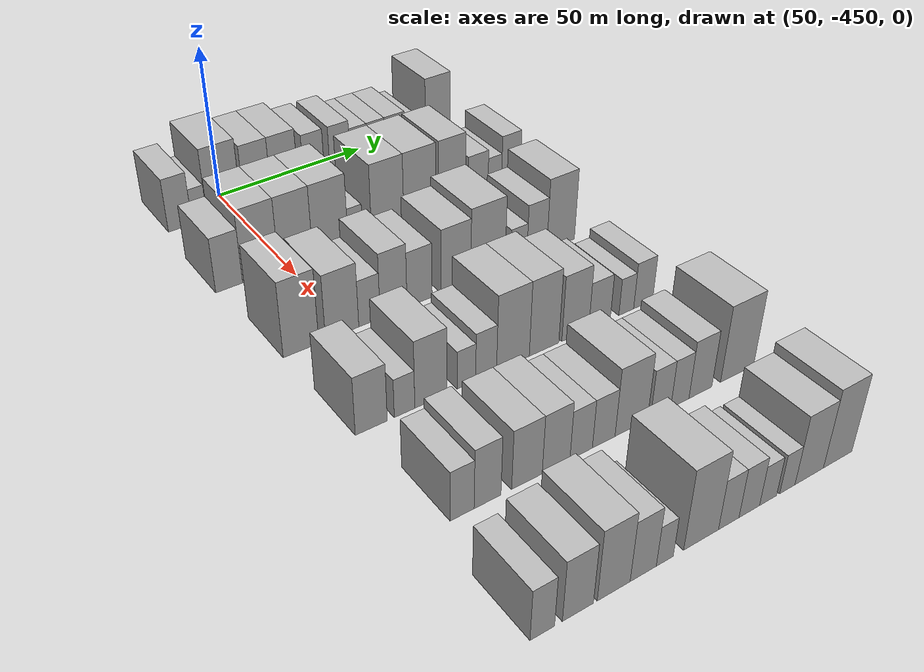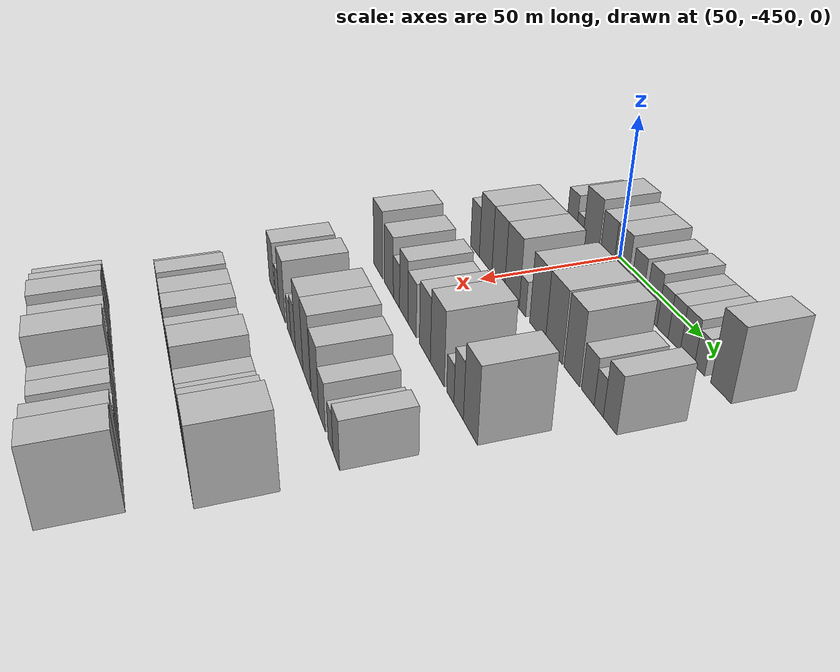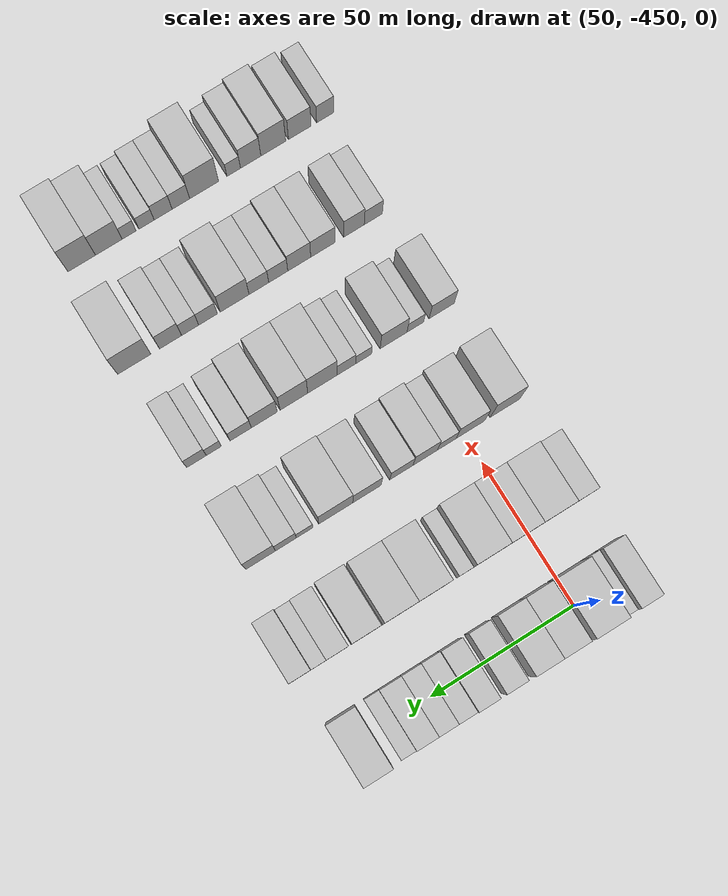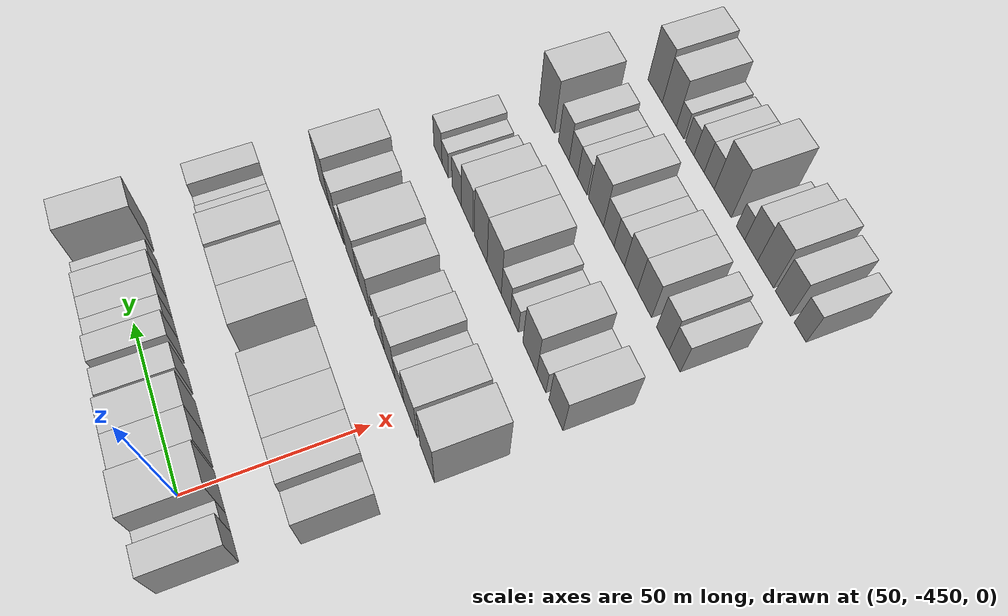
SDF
<sdf version="1.6">
 <world name="default">
  <model name="building_12">
   <static>1</static>
   <pose>50.0000 -467.2561 0 0.000000 0.000000 0.000000</pose>
   <link name="link">
    <pose>0 0 9.00 0 0 0</pose>
    <collision name="collision"><geometry><box><size>20.0000 7.5766 18.0000</size></box></geometry></collision>
    <visual name="visual">
     <cast_shadows>0</cast_shadows>
     <geometry><box><size>20.0000 7.5766 18.0000</size></box></geometry>
     <material>
      <script>
       <uri>model://HANNAS_wall/materials/scripts</uri>
       <uri>model://HANNAS_wall/materials/textures</uri>
       <name>vrc/HANNAS_wall</name>
      </script>
     </material>
    </visual>
   </link>
  </model>
  <model name="building_13">
   <static>1</static>
   <pose>50.0000 -461.0217 0 0.000000 0.000000 0.000000</pose>
   <link name="link">
    <pose>0 0 6.00 0 0 0</pose>
    <collision name="collision"><geometry><box><size>20.0000 4.8921 12.0000</size></box></geometry></collision>
    <visual name="visual">
     <cast_shadows>0</cast_shadows>
     <geometry><box><size>20.0000 4.8921 12.0000</size></box></geometry>
     <material>
      <script>
       <uri>model://HANNAS_wall/materials/scripts</uri>
       <uri>model://HANNAS_wall/materials/textures</uri>
       <name>vrc/HANNAS_wall</name>
      </script>
     </material>
    </visual>
   </link>
  </model>
  <model name="building_14">
   <static>1</static>
   <pose>50.0000 -452.9068 0 0.000000 0.000000 0.000000</pose>
   <link name="link">
    <pose>0 0 12.00 0 0 0</pose>
    <collision name="collision"><geometry><box><size>20.0000 11.3376 24.0000</size></box></geometry></collision>
    <visual name="visual">
     <cast_shadows>0</cast_shadows>
     <geometry><box><size>20.0000 11.3376 24.0000</size></box></geometry>
     <material>
      <script>
       <uri>model://HANNAS_wall/materials/scripts</uri>
       <uri>model://HANNAS_wall/materials/textures</uri>
       <name>vrc/HANNAS_wall</name>
      </script>
     </material>
    </visual>
   </link>
  </model>
  <model name="building_15">
   <static>1</static>
   <pose>50.0000 -441.6312 0 0.000000 0.000000 0.000000</pose>
   <link name="link">
    <pose>0 0 10.50 0 0 0</pose>
    <collision name="collision"><geometry><box><size>20.0000 9.2136 21.0000</size></box></geometry></collision>
    <visual name="visual">
     <cast_shadows>0</cast_shadows>
     <geometry><box><size>20.0000 9.2136 21.0000</size></box></geometry>
     <material>
      <script>
       <uri>model://HANNAS_wall/materials/scripts</uri>
       <uri>model://HANNAS_wall/materials/textures</uri>
       <name>vrc/HANNAS_wall</name>
      </script>
     </material>
    </visual>
   </link>
  </model>
  <model name="building_16">
   <static>1</static>
   <pose>50.0000 -432.2996 0 0.000000 0.000000 0.000000</pose>
   <link name="link">
    <pose>0 0 10.50 0 0 0</pose>
    <collision name="collision"><geometry><box><size>20.0000 9.4496 21.0000</size></box></geometry></collision>
    <visual name="visual">
     <cast_shadows>0</cast_shadows>
     <geometry><box><size>20.0000 9.4496 21.0000</size></box></geometry>
     <material>
      <script>
       <uri>model://HANNAS_wall/materials/scripts</uri>
       <uri>model://HANNAS_wall/materials/textures</uri>
       <name>vrc/HANNAS_wall</name>
      </script>
     </material>
    </visual>
   </link>
  </model>
  <model name="building_17">
   <static>1</static>
   <pose>50.0000 -421.8844 0 0.000000 0.000000 0.000000</pose>
   <link name="link">
    <pose>0 0 9.00 0 0 0</pose>
    <collision name="collision"><geometry><box><size>20.0000 7.3808 18.0000</size></box></geometry></collision>
    <visual name="visual">
     <cast_shadows>0</cast_shadows>
     <geometry><box><size>20.0000 7.3808 18.0000</size></box></geometry>
     <material>
      <script>
       <uri>model://HANNAS_wall/materials/scripts</uri>
       <uri>model://HANNAS_wall/materials/textures</uri>
       <name>vrc/HANNAS_wall</name>
      </script>
     </material>
    </visual>
   </link>
  </model>
  <model name="building_18">
   <static>1</static>
   <pose>50.0000 -412.5191 0 0.000000 0.000000 0.000000</pose>
   <link name="link">
    <pose>0 0 9.00 0 0 0</pose>
    <collision name="collision"><geometry><box><size>20.0000 7.3499 18.0000</size></box></geometry></collision>
    <visual name="visual">
     <cast_shadows>0</cast_shadows>
     <geometry><box><size>20.0000 7.3499 18.0000</size></box></geometry>
     <material>
      <script>
       <uri>model://HANNAS_wall/materials/scripts</uri>
       <uri>model://HANNAS_wall/materials/textures</uri>
       <name>vrc/HANNAS_wall</name>
      </script>
     </material>
    </visual>
   </link>
  </model>
  <model name="building_19">
   <static>1</static>
   <pose>50.0000 -405.6760 0 0.000000 0.000000 0.000000</pose>
   <link name="link">
    <pose>0 0 7.50 0 0 0</pose>
    <collision name="collision"><geometry><box><size>20.0000 6.3364 15.0000</size></box></geometry></collision>
    <visual name="visual">
     <cast_shadows>0</cast_shadows>
     <geometry><box><size>20.0000 6.3364 15.0000</size></box></geometry>
     <material>
      <script>
       <uri>model://HANNAS_wall/materials/scripts</uri>
       <uri>model://HANNAS_wall/materials/textures</uri>
       <name>vrc/HANNAS_wall</name>
      </script>
     </material>
    </visual>
   </link>
  </model>
  <model name="building_20">
   <static>1</static>
   <pose>50.0000 -399.1858 0 0.000000 0.000000 0.000000</pose>
   <link name="link">
    <pose>0 0 7.50 0 0 0</pose>
    <collision name="collision"><geometry><box><size>20.0000 6.6439 15.0000</size></box></geometry></collision>
    <visual name="visual">
     <cast_shadows>0</cast_shadows>
     <geometry><box><size>20.0000 6.6439 15.0000</size></box></geometry>
     <material>
      <script>
       <uri>model://HANNAS_wall/materials/scripts</uri>
       <uri>model://HANNAS_wall/materials/textures</uri>
       <name>vrc/HANNAS_wall</name>
      </script>
     </material>
    </visual>
   </link>
  </model>
  <model name="building_21">
   <static>1</static>
   <pose>50.0000 -392.1210 0 0.000000 0.000000 0.000000</pose>
   <link name="link">
    <pose>0 0 7.50 0 0 0</pose>
    <collision name="collision"><geometry><box><size>20.0000 7.4857 15.0000</size></box></geometry></collision>
    <visual name="visual">
     <cast_shadows>0</cast_shadows>
     <geometry><box><size>20.0000 7.4857 15.0000</size></box></geometry>
     <material>
      <script>
       <uri>model://HANNAS_wall/materials/scripts</uri>
       <uri>model://HANNAS_wall/materials/textures</uri>
       <name>vrc/HANNAS_wall</name>
      </script>
     </material>
    </visual>
   </link>
  </model>
  <model name="building_22">
   <static>1</static>
   <pose>50.0000 -385.8359 0 0.000000 0.000000 0.000000</pose>
   <link name="link">
    <pose>0 0 6.00 0 0 0</pose>
    <collision name="collision"><geometry><box><size>20.0000 5.0846 12.0000</size></box></geometry></collision>
    <visual name="visual">
     <cast_shadows>0</cast_shadows>
     <geometry><box><size>20.0000 5.0846 12.0000</size></box></geometry>
     <material>
      <script>
       <uri>model://HANNAS_wall/materials/scripts</uri>
       <uri>model://HANNAS_wall/materials/textures</uri>
       <name>vrc/HANNAS_wall</name>
      </script>
     </material>
    </visual>
   </link>
  </model>
  <model name="building_23">
   <static>1</static>
   <pose>50.0000 -375.3861 0 0.000000 0.000000 0.000000</pose>
   <link name="link">
    <pose>0 0 12.00 0 0 0</pose>
    <collision name="collision"><geometry><box><size>20.0000 9.8149 24.0000</size></box></geometry></collision>
    <visual name="visual">
     <cast_shadows>0</cast_shadows>
     <geometry><box><size>20.0000 9.8149 24.0000</size></box></geometry>
     <material>
      <script>
       <uri>model://HANNAS_wall/materials/scripts</uri>
       <uri>model://HANNAS_wall/materials/textures</uri>
       <name>vrc/HANNAS_wall</name>
      </script>
     </material>
    </visual>
   </link>
  </model>
  <model name="building_135">
   <static>1</static>
   <pose>85.0000 -468.1888 0 0.000000 0.000000 0.000000</pose>
   <link name="link">
    <pose>0 0 9.00 0 0 0</pose>
    <collision name="collision"><geometry><box><size>20.0000 8.2189 18.0000</size></box></geometry></collision>
    <visual name="visual">
     <cast_shadows>0</cast_shadows>
     <geometry><box><size>20.0000 8.2189 18.0000</size></box></geometry>
     <material>
      <script>
       <uri>model://HANNAS_wall/materials/scripts</uri>
       <uri>model://HANNAS_wall/materials/textures</uri>
       <name>vrc/HANNAS_wall</name>
      </script>
     </material>
    </visual>
   </link>
  </model>
  <model name="building_136">
   <static>1</static>
   <pose>85.0000 -458.4187 0 0.000000 0.000000 0.000000</pose>
   <link name="link">
    <pose>0 0 12.00 0 0 0</pose>
    <collision name="collision"><geometry><box><size>20.0000 11.3213 24.0000</size></box></geometry></collision>
    <visual name="visual">
     <cast_shadows>0</cast_shadows>
     <geometry><box><size>20.0000 11.3213 24.0000</size></box></geometry>
     <material>
      <script>
       <uri>model://HANNAS_wall/materials/scripts</uri>
       <uri>model://HANNAS_wall/materials/textures</uri>
       <name>vrc/HANNAS_wall</name>
      </script>
     </material>
    </visual>
   </link>
  </model>
  <model name="building_137">
   <static>1</static>
   <pose>85.0000 -447.2856 0 0.000000 0.000000 0.000000</pose>
   <link name="link">
    <pose>0 0 12.00 0 0 0</pose>
    <collision name="collision"><geometry><box><size>20.0000 10.9450 24.0000</size></box></geometry></collision>
    <visual name="visual">
     <cast_shadows>0</cast_shadows>
     <geometry><box><size>20.0000 10.9450 24.0000</size></box></geometry>
     <material>
      <script>
       <uri>model://HANNAS_wall/materials/scripts</uri>
       <uri>model://HANNAS_wall/materials/textures</uri>
       <name>vrc/HANNAS_wall</name>
      </script>
     </material>
    </visual>
   </link>
  </model>
  <model name="building_138">
   <static>1</static>
   <pose>85.0000 -435.9674 0 0.000000 0.000000 0.000000</pose>
   <link name="link">
    <pose>0 0 12.00 0 0 0</pose>
    <collision name="collision"><geometry><box><size>20.0000 11.6914 24.0000</size></box></geometry></collision>
    <visual name="visual">
     <cast_shadows>0</cast_shadows>
     <geometry><box><size>20.0000 11.6914 24.0000</size></box></geometry>
     <material>
      <script>
       <uri>model://HANNAS_wall/materials/scripts</uri>
       <uri>model://HANNAS_wall/materials/textures</uri>
       <name>vrc/HANNAS_wall</name>
      </script>
     </material>
    </visual>
   </link>
  </model>
  <model name="building_139">
   <static>1</static>
   <pose>85.0000 -427.6466 0 0.000000 0.000000 0.000000</pose>
   <link name="link">
    <pose>0 0 6.00 0 0 0</pose>
    <collision name="collision"><geometry><box><size>20.0000 4.9502 12.0000</size></box></geometry></collision>
    <visual name="visual">
     <cast_shadows>0</cast_shadows>
     <geometry><box><size>20.0000 4.9502 12.0000</size></box></geometry>
     <material>
      <script>
       <uri>model://HANNAS_wall/materials/scripts</uri>
       <uri>model://HANNAS_wall/materials/textures</uri>
       <name>vrc/HANNAS_wall</name>
      </script>
     </material>
    </visual>
   </link>
  </model>
  <model name="building_140">
   <static>1</static>
   <pose>85.0000 -416.5354 0 0.000000 0.000000 0.000000</pose>
   <link name="link">
    <pose>0 0 12.00 0 0 0</pose>
    <collision name="collision"><geometry><box><size>20.0000 11.2720 24.0000</size></box></geometry></collision>
    <visual name="visual">
     <cast_shadows>0</cast_shadows>
     <geometry><box><size>20.0000 11.2720 24.0000</size></box></geometry>
     <material>
      <script>
       <uri>model://HANNAS_wall/materials/scripts</uri>
       <uri>model://HANNAS_wall/materials/textures</uri>
       <name>vrc/HANNAS_wall</name>
      </script>
     </material>
    </visual>
   </link>
  </model>
  <model name="building_141">
   <static>1</static>
   <pose>85.0000 -405.1722 0 0.000000 0.000000 0.000000</pose>
   <link name="link">
    <pose>0 0 12.00 0 0 0</pose>
    <collision name="collision"><geometry><box><size>20.0000 11.4544 24.0000</size></box></geometry></collision>
    <visual name="visual">
     <cast_shadows>0</cast_shadows>
     <geometry><box><size>20.0000 11.4544 24.0000</size></box></geometry>
     <material>
      <script>
       <uri>model://HANNAS_wall/materials/scripts</uri>
       <uri>model://HANNAS_wall/materials/textures</uri>
       <name>vrc/HANNAS_wall</name>
      </script>
     </material>
    </visual>
   </link>
  </model>
  <model name="building_142">
   <static>1</static>
   <pose>85.0000 -393.5200 0 0.000000 0.000000 0.000000</pose>
   <link name="link">
    <pose>0 0 12.00 0 0 0</pose>
    <collision name="collision"><geometry><box><size>20.0000 9.8500 24.0000</size></box></geometry></collision>
    <visual name="visual">
     <cast_shadows>0</cast_shadows>
     <geometry><box><size>20.0000 9.8500 24.0000</size></box></geometry>
     <material>
      <script>
       <uri>model://HANNAS_wall/materials/scripts</uri>
       <uri>model://HANNAS_wall/materials/textures</uri>
       <name>vrc/HANNAS_wall</name>
      </script>
     </material>
    </visual>
   </link>
  </model>
  <model name="building_143">
   <static>1</static>
   <pose>85.0000 -383.8487 0 0.000000 0.000000 0.000000</pose>
   <link name="link">
    <pose>0 0 7.50 0 0 0</pose>
    <collision name="collision"><geometry><box><size>20.0000 7.4926 15.0000</size></box></geometry></collision>
    <visual name="visual">
     <cast_shadows>0</cast_shadows>
     <geometry><box><size>20.0000 7.4926 15.0000</size></box></geometry>
     <material>
      <script>
       <uri>model://HANNAS_wall/materials/scripts</uri>
       <uri>model://HANNAS_wall/materials/textures</uri>
       <name>vrc/HANNAS_wall</name>
      </script>
     </material>
    </visual>
   </link>
  </model>
  <model name="building_144">
   <static>1</static>
   <pose>85.0000 -377.5324 0 0.000000 0.000000 0.000000</pose>
   <link name="link">
    <pose>0 0 6.00 0 0 0</pose>
    <collision name="collision"><geometry><box><size>20.0000 5.1399 12.0000</size></box></geometry></collision>
    <visual name="visual">
     <cast_shadows>0</cast_shadows>
     <geometry><box><size>20.0000 5.1399 12.0000</size></box></geometry>
     <material>
      <script>
       <uri>model://HANNAS_wall/materials/scripts</uri>
       <uri>model://HANNAS_wall/materials/textures</uri>
       <name>vrc/HANNAS_wall</name>
      </script>
     </material>
    </visual>
   </link>
  </model>
  <model name="building_145">
   <static>1</static>
   <pose>85.0000 -371.3233 0 0.000000 0.000000 0.000000</pose>
   <link name="link">
    <pose>0 0 9.00 0 0 0</pose>
    <collision name="collision"><geometry><box><size>20.0000 7.2783 18.0000</size></box></geometry></collision>
    <visual name="visual">
     <cast_shadows>0</cast_shadows>
     <geometry><box><size>20.0000 7.2783 18.0000</size></box></geometry>
     <material>
      <script>
       <uri>model://HANNAS_wall/materials/scripts</uri>
       <uri>model://HANNAS_wall/materials/textures</uri>
       <name>vrc/HANNAS_wall</name>
      </script>
     </material>
    </visual>
   </link>
  </model>
  <model name="building_260">
   <static>1</static>
   <pose>120.0000 -464.5844 0 0.000000 0.000000 0.000000</pose>
   <link name="link">
    <pose>0 0 12.00 0 0 0</pose>
    <collision name="collision"><geometry><box><size>20.0000 10.4617 24.0000</size></box></geometry></collision>
    <visual name="visual">
     <cast_shadows>0</cast_shadows>
     <geometry><box><size>20.0000 10.4617 24.0000</size></box></geometry>
     <material>
      <script>
       <uri>model://HANNAS_wall/materials/scripts</uri>
       <uri>model://HANNAS_wall/materials/textures</uri>
       <name>vrc/HANNAS_wall</name>
      </script>
     </material>
    </visual>
   </link>
  </model>
  <model name="building_261">
   <static>1</static>
   <pose>120.0000 -452.3016 0 0.000000 0.000000 0.000000</pose>
   <link name="link">
    <pose>0 0 10.50 0 0 0</pose>
    <collision name="collision"><geometry><box><size>20.0000 10.1040 21.0000</size></box></geometry></collision>
    <visual name="visual">
     <cast_shadows>0</cast_shadows>
     <geometry><box><size>20.0000 10.1040 21.0000</size></box></geometry>
     <material>
      <script>
       <uri>model://HANNAS_wall/materials/scripts</uri>
       <uri>model://HANNAS_wall/materials/textures</uri>
       <name>vrc/HANNAS_wall</name>
      </script>
     </material>
    </visual>
   </link>
  </model>
  <model name="building_262">
   <static>1</static>
   <pose>120.0000 -443.9284 0 0.000000 0.000000 0.000000</pose>
   <link name="link">
    <pose>0 0 7.50 0 0 0</pose>
    <collision name="collision"><geometry><box><size>20.0000 6.6424 15.0000</size></box></geometry></collision>
    <visual name="visual">
     <cast_shadows>0</cast_shadows>
     <geometry><box><size>20.0000 6.6424 15.0000</size></box></geometry>
     <material>
      <script>
       <uri>model://HANNAS_wall/materials/scripts</uri>
       <uri>model://HANNAS_wall/materials/textures</uri>
       <name>vrc/HANNAS_wall</name>
      </script>
     </material>
    </visual>
   </link>
  </model>
  <model name="building_263">
   <static>1</static>
   <pose>120.0000 -436.3320 0 0.000000 0.000000 0.000000</pose>
   <link name="link">
    <pose>0 0 10.50 0 0 0</pose>
    <collision name="collision"><geometry><box><size>20.0000 8.5503 21.0000</size></box></geometry></collision>
    <visual name="visual">
     <cast_shadows>0</cast_shadows>
     <geometry><box><size>20.0000 8.5503 21.0000</size></box></geometry>
     <material>
      <script>
       <uri>model://HANNAS_wall/materials/scripts</uri>
       <uri>model://HANNAS_wall/materials/textures</uri>
       <name>vrc/HANNAS_wall</name>
      </script>
     </material>
    </visual>
   </link>
  </model>
  <model name="building_264">
   <static>1</static>
   <pose>120.0000 -427.9840 0 0.000000 0.000000 0.000000</pose>
   <link name="link">
    <pose>0 0 9.00 0 0 0</pose>
    <collision name="collision"><geometry><box><size>20.0000 8.1458 18.0000</size></box></geometry></collision>
    <visual name="visual">
     <cast_shadows>0</cast_shadows>
     <geometry><box><size>20.0000 8.1458 18.0000</size></box></geometry>
     <material>
      <script>
       <uri>model://HANNAS_wall/materials/scripts</uri>
       <uri>model://HANNAS_wall/materials/textures</uri>
       <name>vrc/HANNAS_wall</name>
      </script>
     </material>
    </visual>
   </link>
  </model>
  <model name="building_265">
   <static>1</static>
   <pose>120.0000 -415.9526 0 0.000000 0.000000 0.000000</pose>
   <link name="link">
    <pose>0 0 10.50 0 0 0</pose>
    <collision name="collision"><geometry><box><size>20.0000 9.9169 21.0000</size></box></geometry></collision>
    <visual name="visual">
     <cast_shadows>0</cast_shadows>
     <geometry><box><size>20.0000 9.9169 21.0000</size></box></geometry>
     <material>
      <script>
       <uri>model://HANNAS_wall/materials/scripts</uri>
       <uri>model://HANNAS_wall/materials/textures</uri>
       <name>vrc/HANNAS_wall</name>
      </script>
     </material>
    </visual>
   </link>
  </model>
  <model name="building_266">
   <static>1</static>
   <pose>120.0000 -405.0792 0 0.000000 0.000000 0.000000</pose>
   <link name="link">
    <pose>0 0 12.00 0 0 0</pose>
    <collision name="collision"><geometry><box><size>20.0000 11.8299 24.0000</size></box></geometry></collision>
    <visual name="visual">
     <cast_shadows>0</cast_shadows>
     <geometry><box><size>20.0000 11.8299 24.0000</size></box></geometry>
     <material>
      <script>
       <uri>model://HANNAS_wall/materials/scripts</uri>
       <uri>model://HANNAS_wall/materials/textures</uri>
       <name>vrc/HANNAS_wall</name>
      </script>
     </material>
    </visual>
   </link>
  </model>
  <model name="building_267">
   <static>1</static>
   <pose>120.0000 -394.3012 0 0.000000 0.000000 0.000000</pose>
   <link name="link">
    <pose>0 0 6.00 0 0 0</pose>
    <collision name="collision"><geometry><box><size>20.0000 5.7261 12.0000</size></box></geometry></collision>
    <visual name="visual">
     <cast_shadows>0</cast_shadows>
     <geometry><box><size>20.0000 5.7261 12.0000</size></box></geometry>
     <material>
      <script>
       <uri>model://HANNAS_wall/materials/scripts</uri>
       <uri>model://HANNAS_wall/materials/textures</uri>
       <name>vrc/HANNAS_wall</name>
      </script>
     </material>
    </visual>
   </link>
  </model>
  <model name="building_268">
   <static>1</static>
   <pose>120.0000 -387.8201 0 0.000000 0.000000 0.000000</pose>
   <link name="link">
    <pose>0 0 9.00 0 0 0</pose>
    <collision name="collision"><geometry><box><size>20.0000 7.2360 18.0000</size></box></geometry></collision>
    <visual name="visual">
     <cast_shadows>0</cast_shadows>
     <geometry><box><size>20.0000 7.2360 18.0000</size></box></geometry>
     <material>
      <script>
       <uri>model://HANNAS_wall/materials/scripts</uri>
       <uri>model://HANNAS_wall/materials/textures</uri>
       <name>vrc/HANNAS_wall</name>
      </script>
     </material>
    </visual>
   </link>
  </model>
  <model name="building_269">
   <static>1</static>
   <pose>120.0000 -379.0991 0 0.000000 0.000000 0.000000</pose>
   <link name="link">
    <pose>0 0 12.00 0 0 0</pose>
    <collision name="collision"><geometry><box><size>20.0000 10.2060 24.0000</size></box></geometry></collision>
    <visual name="visual">
     <cast_shadows>0</cast_shadows>
     <geometry><box><size>20.0000 10.2060 24.0000</size></box></geometry>
     <material>
      <script>
       <uri>model://HANNAS_wall/materials/scripts</uri>
       <uri>model://HANNAS_wall/materials/textures</uri>
       <name>vrc/HANNAS_wall</name>
      </script>
     </material>
    </visual>
   </link>
  </model>
  <model name="building_386">
   <static>1</static>
   <pose>155.0000 -464.4736 0 0.000000 0.000000 0.000000</pose>
   <link name="link">
    <pose>0 0 9.00 0 0 0</pose>
    <collision name="collision"><geometry><box><size>20.0000 8.9640 18.0000</size></box></geometry></collision>
    <visual name="visual">
     <cast_shadows>0</cast_shadows>
     <geometry><box><size>20.0000 8.9640 18.0000</size></box></geometry>
     <material>
      <script>
       <uri>model://HANNAS_wall/materials/scripts</uri>
       <uri>model://HANNAS_wall/materials/textures</uri>
       <name>vrc/HANNAS_wall</name>
      </script>
     </material>
    </visual>
   </link>
  </model>
  <model name="building_387">
   <static>1</static>
   <pose>155.0000 -455.0361 0 0.000000 0.000000 0.000000</pose>
   <link name="link">
    <pose>0 0 6.00 0 0 0</pose>
    <collision name="collision"><geometry><box><size>20.0000 5.9110 12.0000</size></box></geometry></collision>
    <visual name="visual">
     <cast_shadows>0</cast_shadows>
     <geometry><box><size>20.0000 5.9110 12.0000</size></box></geometry>
     <material>
      <script>
       <uri>model://HANNAS_wall/materials/scripts</uri>
       <uri>model://HANNAS_wall/materials/textures</uri>
       <name>vrc/HANNAS_wall</name>
      </script>
     </material>
    </visual>
   </link>
  </model>
  <model name="building_388">
   <static>1</static>
   <pose>155.0000 -447.3252 0 0.000000 0.000000 0.000000</pose>
   <link name="link">
    <pose>0 0 10.50 0 0 0</pose>
    <collision name="collision"><geometry><box><size>20.0000 9.5107 21.0000</size></box></geometry></collision>
    <visual name="visual">
     <cast_shadows>0</cast_shadows>
     <geometry><box><size>20.0000 9.5107 21.0000</size></box></geometry>
     <material>
      <script>
       <uri>model://HANNAS_wall/materials/scripts</uri>
       <uri>model://HANNAS_wall/materials/textures</uri>
       <name>vrc/HANNAS_wall</name>
      </script>
     </material>
    </visual>
   </link>
  </model>
  <model name="building_389">
   <static>1</static>
   <pose>155.0000 -436.7473 0 0.000000 0.000000 0.000000</pose>
   <link name="link">
    <pose>0 0 6.00 0 0 0</pose>
    <collision name="collision"><geometry><box><size>20.0000 5.6450 12.0000</size></box></geometry></collision>
    <visual name="visual">
     <cast_shadows>0</cast_shadows>
     <geometry><box><size>20.0000 5.6450 12.0000</size></box></geometry>
     <material>
      <script>
       <uri>model://HANNAS_wall/materials/scripts</uri>
       <uri>model://HANNAS_wall/materials/textures</uri>
       <name>vrc/HANNAS_wall</name>
      </script>
     </material>
    </visual>
   </link>
  </model>
  <model name="building_390">
   <static>1</static>
   <pose>155.0000 -430.6833 0 0.000000 0.000000 0.000000</pose>
   <link name="link">
    <pose>0 0 7.50 0 0 0</pose>
    <collision name="collision"><geometry><box><size>20.0000 6.4829 15.0000</size></box></geometry></collision>
    <visual name="visual">
     <cast_shadows>0</cast_shadows>
     <geometry><box><size>20.0000 6.4829 15.0000</size></box></geometry>
     <material>
      <script>
       <uri>model://HANNAS_wall/materials/scripts</uri>
       <uri>model://HANNAS_wall/materials/textures</uri>
       <name>vrc/HANNAS_wall</name>
      </script>
     </material>
    </visual>
   </link>
  </model>
  <model name="building_391">
   <static>1</static>
   <pose>155.0000 -422.2351 0 0.000000 0.000000 0.000000</pose>
   <link name="link">
    <pose>0 0 12.00 0 0 0</pose>
    <collision name="collision"><geometry><box><size>20.0000 10.4136 24.0000</size></box></geometry></collision>
    <visual name="visual">
     <cast_shadows>0</cast_shadows>
     <geometry><box><size>20.0000 10.4136 24.0000</size></box></geometry>
     <material>
      <script>
       <uri>model://HANNAS_wall/materials/scripts</uri>
       <uri>model://HANNAS_wall/materials/textures</uri>
       <name>vrc/HANNAS_wall</name>
      </script>
     </material>
    </visual>
   </link>
  </model>
  <model name="building_392">
   <static>1</static>
   <pose>155.0000 -412.1958 0 0.000000 0.000000 0.000000</pose>
   <link name="link">
    <pose>0 0 12.00 0 0 0</pose>
    <collision name="collision"><geometry><box><size>20.0000 9.6649 24.0000</size></box></geometry></collision>
    <visual name="visual">
     <cast_shadows>0</cast_shadows>
     <geometry><box><size>20.0000 9.6649 24.0000</size></box></geometry>
     <material>
      <script>
       <uri>model://HANNAS_wall/materials/scripts</uri>
       <uri>model://HANNAS_wall/materials/textures</uri>
       <name>vrc/HANNAS_wall</name>
      </script>
     </material>
    </visual>
   </link>
  </model>
  <model name="building_393">
   <static>1</static>
   <pose>155.0000 -401.8345 0 0.000000 0.000000 0.000000</pose>
   <link name="link">
    <pose>0 0 10.50 0 0 0</pose>
    <collision name="collision"><geometry><box><size>20.0000 9.0578 21.0000</size></box></geometry></collision>
    <visual name="visual">
     <cast_shadows>0</cast_shadows>
     <geometry><box><size>20.0000 9.0578 21.0000</size></box></geometry>
     <material>
      <script>
       <uri>model://HANNAS_wall/materials/scripts</uri>
       <uri>model://HANNAS_wall/materials/textures</uri>
       <name>vrc/HANNAS_wall</name>
      </script>
     </material>
    </visual>
   </link>
  </model>
  <model name="building_394">
   <static>1</static>
   <pose>155.0000 -393.5826 0 0.000000 0.000000 0.000000</pose>
   <link name="link">
    <pose>0 0 7.50 0 0 0</pose>
    <collision name="collision"><geometry><box><size>20.0000 7.4459 15.0000</size></box></geometry></collision>
    <visual name="visual">
     <cast_shadows>0</cast_shadows>
     <geometry><box><size>20.0000 7.4459 15.0000</size></box></geometry>
     <material>
      <script>
       <uri>model://HANNAS_wall/materials/scripts</uri>
       <uri>model://HANNAS_wall/materials/textures</uri>
       <name>vrc/HANNAS_wall</name>
      </script>
     </material>
    </visual>
   </link>
  </model>
  <model name="building_395">
   <static>1</static>
   <pose>155.0000 -384.2409 0 0.000000 0.000000 0.000000</pose>
   <link name="link">
    <pose>0 0 6.00 0 0 0</pose>
    <collision name="collision"><geometry><box><size>20.0000 5.2375 12.0000</size></box></geometry></collision>
    <visual name="visual">
     <cast_shadows>0</cast_shadows>
     <geometry><box><size>20.0000 5.2375 12.0000</size></box></geometry>
     <material>
      <script>
       <uri>model://HANNAS_wall/materials/scripts</uri>
       <uri>model://HANNAS_wall/materials/textures</uri>
       <name>vrc/HANNAS_wall</name>
      </script>
     </material>
    </visual>
   </link>
  </model>
  <model name="building_396">
   <static>1</static>
   <pose>155.0000 -378.2092 0 0.000000 0.000000 0.000000</pose>
   <link name="link">
    <pose>0 0 7.50 0 0 0</pose>
    <collision name="collision"><geometry><box><size>20.0000 6.8259 15.0000</size></box></geometry></collision>
    <visual name="visual">
     <cast_shadows>0</cast_shadows>
     <geometry><box><size>20.0000 6.8259 15.0000</size></box></geometry>
     <material>
      <script>
       <uri>model://HANNAS_wall/materials/scripts</uri>
       <uri>model://HANNAS_wall/materials/textures</uri>
       <name>vrc/HANNAS_wall</name>
      </script>
     </material>
    </visual>
   </link>
  </model>
  <model name="building_507">
   <static>1</static>
   <pose>190.0000 -462.1337 0 0.000000 0.000000 0.000000</pose>
   <link name="link">
    <pose>0 0 7.50 0 0 0</pose>
    <collision name="collision"><geometry><box><size>20.0000 6.4660 15.0000</size></box></geometry></collision>
    <visual name="visual">
     <cast_shadows>0</cast_shadows>
     <geometry><box><size>20.0000 6.4660 15.0000</size></box></geometry>
     <material>
      <script>
       <uri>model://HANNAS_wall/materials/scripts</uri>
       <uri>model://HANNAS_wall/materials/textures</uri>
       <name>vrc/HANNAS_wall</name>
      </script>
     </material>
    </visual>
   </link>
  </model>
  <model name="building_508">
   <static>1</static>
   <pose>190.0000 -455.2079 0 0.000000 0.000000 0.000000</pose>
   <link name="link">
    <pose>0 0 9.00 0 0 0</pose>
    <collision name="collision"><geometry><box><size>20.0000 7.3856 18.0000</size></box></geometry></collision>
    <visual name="visual">
     <cast_shadows>0</cast_shadows>
     <geometry><box><size>20.0000 7.3856 18.0000</size></box></geometry>
     <material>
      <script>
       <uri>model://HANNAS_wall/materials/scripts</uri>
       <uri>model://HANNAS_wall/materials/textures</uri>
       <name>vrc/HANNAS_wall</name>
      </script>
     </material>
    </visual>
   </link>
  </model>
  <model name="building_509">
   <static>1</static>
   <pose>190.0000 -444.1525 0 0.000000 0.000000 0.000000</pose>
   <link name="link">
    <pose>0 0 9.00 0 0 0</pose>
    <collision name="collision"><geometry><box><size>20.0000 8.7251 18.0000</size></box></geometry></collision>
    <visual name="visual">
     <cast_shadows>0</cast_shadows>
     <geometry><box><size>20.0000 8.7251 18.0000</size></box></geometry>
     <material>
      <script>
       <uri>model://HANNAS_wall/materials/scripts</uri>
       <uri>model://HANNAS_wall/materials/textures</uri>
       <name>vrc/HANNAS_wall</name>
      </script>
     </material>
    </visual>
   </link>
  </model>
  <model name="building_510">
   <static>1</static>
   <pose>190.0000 -435.7201 0 0.000000 0.000000 0.000000</pose>
   <link name="link">
    <pose>0 0 9.00 0 0 0</pose>
    <collision name="collision"><geometry><box><size>20.0000 8.1399 18.0000</size></box></geometry></collision>
    <visual name="visual">
     <cast_shadows>0</cast_shadows>
     <geometry><box><size>20.0000 8.1399 18.0000</size></box></geometry>
     <material>
      <script>
       <uri>model://HANNAS_wall/materials/scripts</uri>
       <uri>model://HANNAS_wall/materials/textures</uri>
       <name>vrc/HANNAS_wall</name>
      </script>
     </material>
    </visual>
   </link>
  </model>
  <model name="building_511">
   <static>1</static>
   <pose>190.0000 -428.2763 0 0.000000 0.000000 0.000000</pose>
   <link name="link">
    <pose>0 0 7.50 0 0 0</pose>
    <collision name="collision"><geometry><box><size>20.0000 6.7477 15.0000</size></box></geometry></collision>
    <visual name="visual">
     <cast_shadows>0</cast_shadows>
     <geometry><box><size>20.0000 6.7477 15.0000</size></box></geometry>
     <material>
      <script>
       <uri>model://HANNAS_wall/materials/scripts</uri>
       <uri>model://HANNAS_wall/materials/textures</uri>
       <name>vrc/HANNAS_wall</name>
      </script>
     </material>
    </visual>
   </link>
  </model>
  <model name="building_512">
   <static>1</static>
   <pose>190.0000 -421.4230 0 0.000000 0.000000 0.000000</pose>
   <link name="link">
    <pose>0 0 7.50 0 0 0</pose>
    <collision name="collision"><geometry><box><size>20.0000 6.9587 15.0000</size></box></geometry></collision>
    <visual name="visual">
     <cast_shadows>0</cast_shadows>
     <geometry><box><size>20.0000 6.9587 15.0000</size></box></geometry>
     <material>
      <script>
       <uri>model://HANNAS_wall/materials/scripts</uri>
       <uri>model://HANNAS_wall/materials/textures</uri>
       <name>vrc/HANNAS_wall</name>
      </script>
     </material>
    </visual>
   </link>
  </model>
  <model name="building_513">
   <static>1</static>
   <pose>190.0000 -412.8400 0 0.000000 0.000000 0.000000</pose>
   <link name="link">
    <pose>0 0 10.50 0 0 0</pose>
    <collision name="collision"><geometry><box><size>20.0000 10.2074 21.0000</size></box></geometry></collision>
    <visual name="visual">
     <cast_shadows>0</cast_shadows>
     <geometry><box><size>20.0000 10.2074 21.0000</size></box></geometry>
     <material>
      <script>
       <uri>model://HANNAS_wall/materials/scripts</uri>
       <uri>model://HANNAS_wall/materials/textures</uri>
       <name>vrc/HANNAS_wall</name>
      </script>
     </material>
    </visual>
   </link>
  </model>
  <model name="building_514">
   <static>1</static>
   <pose>190.0000 -403.4555 0 0.000000 0.000000 0.000000</pose>
   <link name="link">
    <pose>0 0 7.50 0 0 0</pose>
    <collision name="collision"><geometry><box><size>20.0000 6.5615 15.0000</size></box></geometry></collision>
    <visual name="visual">
     <cast_shadows>0</cast_shadows>
     <geometry><box><size>20.0000 6.5615 15.0000</size></box></geometry>
     <material>
      <script>
       <uri>model://HANNAS_wall/materials/scripts</uri>
       <uri>model://HANNAS_wall/materials/textures</uri>
       <name>vrc/HANNAS_wall</name>
      </script>
     </material>
    </visual>
   </link>
  </model>
  <model name="building_515">
   <static>1</static>
   <pose>190.0000 -397.1561 0 0.000000 0.000000 0.000000</pose>
   <link name="link">
    <pose>0 0 7.50 0 0 0</pose>
    <collision name="collision"><geometry><box><size>20.0000 6.0375 15.0000</size></box></geometry></collision>
    <visual name="visual">
     <cast_shadows>0</cast_shadows>
     <geometry><box><size>20.0000 6.0375 15.0000</size></box></geometry>
     <material>
      <script>
       <uri>model://HANNAS_wall/materials/scripts</uri>
       <uri>model://HANNAS_wall/materials/textures</uri>
       <name>vrc/HANNAS_wall</name>
      </script>
     </material>
    </visual>
   </link>
  </model>
  <model name="building_516">
   <static>1</static>
   <pose>190.0000 -390.2697 0 0.000000 0.000000 0.000000</pose>
   <link name="link">
    <pose>0 0 9.00 0 0 0</pose>
    <collision name="collision"><geometry><box><size>20.0000 7.7352 18.0000</size></box></geometry></collision>
    <visual name="visual">
     <cast_shadows>0</cast_shadows>
     <geometry><box><size>20.0000 7.7352 18.0000</size></box></geometry>
     <material>
      <script>
       <uri>model://HANNAS_wall/materials/scripts</uri>
       <uri>model://HANNAS_wall/materials/textures</uri>
       <name>vrc/HANNAS_wall</name>
      </script>
     </material>
    </visual>
   </link>
  </model>
  <model name="building_517">
   <static>1</static>
   <pose>190.0000 -377.5988 0 0.000000 0.000000 0.000000</pose>
   <link name="link">
    <pose>0 0 12.00 0 0 0</pose>
    <collision name="collision"><geometry><box><size>20.0000 11.6066 24.0000</size></box></geometry></collision>
    <visual name="visual">
     <cast_shadows>0</cast_shadows>
     <geometry><box><size>20.0000 11.6066 24.0000</size></box></geometry>
     <material>
      <script>
       <uri>model://HANNAS_wall/materials/scripts</uri>
       <uri>model://HANNAS_wall/materials/textures</uri>
       <name>vrc/HANNAS_wall</name>
      </script>
     </material>
    </visual>
   </link>
  </model>
  <model name="building_632">
   <static>1</static>
   <pose>225.0000 -466.7084 0 0.000000 0.000000 0.000000</pose>
   <link name="link">
    <pose>0 0 7.50 0 0 0</pose>
    <collision name="collision"><geometry><box><size>20.0000 6.2074 15.0000</size></box></geometry></collision>
    <visual name="visual">
     <cast_shadows>0</cast_shadows>
     <geometry><box><size>20.0000 6.2074 15.0000</size></box></geometry>
     <material>
      <script>
       <uri>model://HANNAS_wall/materials/scripts</uri>
       <uri>model://HANNAS_wall/materials/textures</uri>
       <name>vrc/HANNAS_wall</name>
      </script>
     </material>
    </visual>
   </link>
  </model>
  <model name="building_633">
   <static>1</static>
   <pose>225.0000 -457.5450 0 0.000000 0.000000 0.000000</pose>
   <link name="link">
    <pose>0 0 9.00 0 0 0</pose>
    <collision name="collision"><geometry><box><size>20.0000 8.1194 18.0000</size></box></geometry></collision>
    <visual name="visual">
     <cast_shadows>0</cast_shadows>
     <geometry><box><size>20.0000 8.1194 18.0000</size></box></geometry>
     <material>
      <script>
       <uri>model://HANNAS_wall/materials/scripts</uri>
       <uri>model://HANNAS_wall/materials/textures</uri>
       <name>vrc/HANNAS_wall</name>
      </script>
     </material>
    </visual>
   </link>
  </model>
  <model name="building_634">
   <static>1</static>
   <pose>225.0000 -448.0307 0 0.000000 0.000000 0.000000</pose>
   <link name="link">
    <pose>0 0 10.50 0 0 0</pose>
    <collision name="collision"><geometry><box><size>20.0000 8.9091 21.0000</size></box></geometry></collision>
    <visual name="visual">
     <cast_shadows>0</cast_shadows>
     <geometry><box><size>20.0000 8.9091 21.0000</size></box></geometry>
     <material>
      <script>
       <uri>model://HANNAS_wall/materials/scripts</uri>
       <uri>model://HANNAS_wall/materials/textures</uri>
       <name>vrc/HANNAS_wall</name>
      </script>
     </material>
    </visual>
   </link>
  </model>
  <model name="building_635">
   <static>1</static>
   <pose>225.0000 -439.9361 0 0.000000 0.000000 0.000000</pose>
   <link name="link">
    <pose>0 0 9.00 0 0 0</pose>
    <collision name="collision"><geometry><box><size>20.0000 7.2802 18.0000</size></box></geometry></collision>
    <visual name="visual">
     <cast_shadows>0</cast_shadows>
     <geometry><box><size>20.0000 7.2802 18.0000</size></box></geometry>
     <material>
      <script>
       <uri>model://HANNAS_wall/materials/scripts</uri>
       <uri>model://HANNAS_wall/materials/textures</uri>
       <name>vrc/HANNAS_wall</name>
      </script>
     </material>
    </visual>
   </link>
  </model>
  <model name="building_636">
   <static>1</static>
   <pose>225.0000 -433.8734 0 0.000000 0.000000 0.000000</pose>
   <link name="link">
    <pose>0 0 6.00 0 0 0</pose>
    <collision name="collision"><geometry><box><size>20.0000 4.8451 12.0000</size></box></geometry></collision>
    <visual name="visual">
     <cast_shadows>0</cast_shadows>
     <geometry><box><size>20.0000 4.8451 12.0000</size></box></geometry>
     <material>
      <script>
       <uri>model://HANNAS_wall/materials/scripts</uri>
       <uri>model://HANNAS_wall/materials/textures</uri>
       <name>vrc/HANNAS_wall</name>
      </script>
     </material>
    </visual>
   </link>
  </model>
  <model name="building_637">
   <static>1</static>
   <pose>225.0000 -423.3132 0 0.000000 0.000000 0.000000</pose>
   <link name="link">
    <pose>0 0 12.00 0 0 0</pose>
    <collision name="collision"><geometry><box><size>20.0000 10.2754 24.0000</size></box></geometry></collision>
    <visual name="visual">
     <cast_shadows>0</cast_shadows>
     <geometry><box><size>20.0000 10.2754 24.0000</size></box></geometry>
     <material>
      <script>
       <uri>model://HANNAS_wall/materials/scripts</uri>
       <uri>model://HANNAS_wall/materials/textures</uri>
       <name>vrc/HANNAS_wall</name>
      </script>
     </material>
    </visual>
   </link>
  </model>
  <model name="building_638">
   <static>1</static>
   <pose>225.0000 -415.0582 0 0.000000 0.000000 0.000000</pose>
   <link name="link">
    <pose>0 0 7.50 0 0 0</pose>
    <collision name="collision"><geometry><box><size>20.0000 6.2345 15.0000</size></box></geometry></collision>
    <visual name="visual">
     <cast_shadows>0</cast_shadows>
     <geometry><box><size>20.0000 6.2345 15.0000</size></box></geometry>
     <material>
      <script>
       <uri>model://HANNAS_wall/materials/scripts</uri>
       <uri>model://HANNAS_wall/materials/textures</uri>
       <name>vrc/HANNAS_wall</name>
      </script>
     </material>
    </visual>
   </link>
  </model>
  <model name="building_639">
   <static>1</static>
   <pose>225.0000 -408.7513 0 0.000000 0.000000 0.000000</pose>
   <link name="link">
    <pose>0 0 7.50 0 0 0</pose>
    <collision name="collision"><geometry><box><size>20.0000 6.3792 15.0000</size></box></geometry></collision>
    <visual name="visual">
     <cast_shadows>0</cast_shadows>
     <geometry><box><size>20.0000 6.3792 15.0000</size></box></geometry>
     <material>
      <script>
       <uri>model://HANNAS_wall/materials/scripts</uri>
       <uri>model://HANNAS_wall/materials/textures</uri>
       <name>vrc/HANNAS_wall</name>
      </script>
     </material>
    </visual>
   </link>
  </model>
  <model name="building_640">
   <static>1</static>
   <pose>225.0000 -402.8729 0 0.000000 0.000000 0.000000</pose>
   <link name="link">
    <pose>0 0 6.00 0 0 0</pose>
    <collision name="collision"><geometry><box><size>20.0000 5.3777 12.0000</size></box></geometry></collision>
    <visual name="visual">
     <cast_shadows>0</cast_shadows>
     <geometry><box><size>20.0000 5.3777 12.0000</size></box></geometry>
     <material>
      <script>
       <uri>model://HANNAS_wall/materials/scripts</uri>
       <uri>model://HANNAS_wall/materials/textures</uri>
       <name>vrc/HANNAS_wall</name>
      </script>
     </material>
    </visual>
   </link>
  </model>
  <model name="building_641">
   <static>1</static>
   <pose>225.0000 -396.7185 0 0.000000 0.000000 0.000000</pose>
   <link name="link">
    <pose>0 0 6.00 0 0 0</pose>
    <collision name="collision"><geometry><box><size>20.0000 4.9311 12.0000</size></box></geometry></collision>
    <visual name="visual">
     <cast_shadows>0</cast_shadows>
     <geometry><box><size>20.0000 4.9311 12.0000</size></box></geometry>
     <material>
      <script>
       <uri>model://HANNAS_wall/materials/scripts</uri>
       <uri>model://HANNAS_wall/materials/textures</uri>
       <name>vrc/HANNAS_wall</name>
      </script>
     </material>
    </visual>
   </link>
  </model>
  <model name="building_642">
   <static>1</static>
   <pose>225.0000 -389.5529 0 0.000000 0.000000 0.000000</pose>
   <link name="link">
    <pose>0 0 10.50 0 0 0</pose>
    <collision name="collision"><geometry><box><size>20.0000 9.4001 21.0000</size></box></geometry></collision>
    <visual name="visual">
     <cast_shadows>0</cast_shadows>
     <geometry><box><size>20.0000 9.4001 21.0000</size></box></geometry>
     <material>
      <script>
       <uri>model://HANNAS_wall/materials/scripts</uri>
       <uri>model://HANNAS_wall/materials/textures</uri>
       <name>vrc/HANNAS_wall</name>
      </script>
     </material>
    </visual>
   </link>
  </model>
  <model name="building_643">
   <static>1</static>
   <pose>225.0000 -380.0106 0 0.000000 0.000000 0.000000</pose>
   <link name="link">
    <pose>0 0 12.00 0 0 0</pose>
    <collision name="collision"><geometry><box><size>20.0000 9.6846 24.0000</size></box></geometry></collision>
    <visual name="visual">
     <cast_shadows>0</cast_shadows>
     <geometry><box><size>20.0000 9.6846 24.0000</size></box></geometry>
     <material>
      <script>
       <uri>model://HANNAS_wall/materials/scripts</uri>
       <uri>model://HANNAS_wall/materials/textures</uri>
       <name>vrc/HANNAS_wall</name>
      </script>
     </material>
    </visual>
   </link>
  </model>
 </world>
</sdf>
